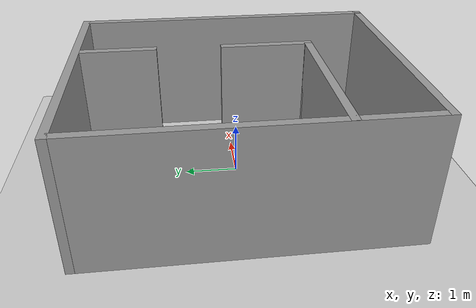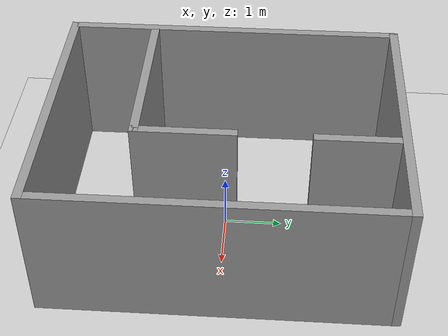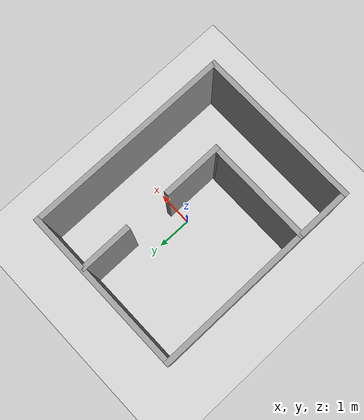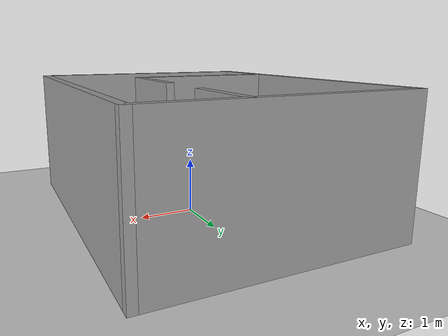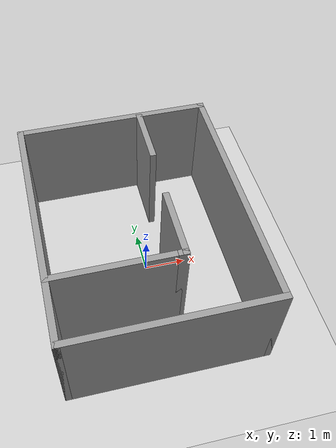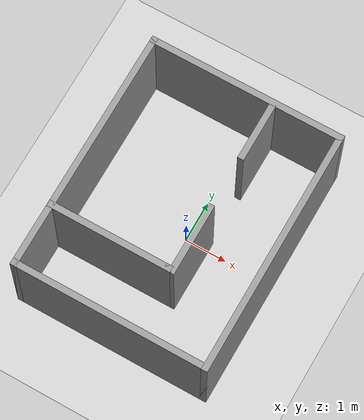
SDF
<sdf version="1.6">
 <world name="default">
  <light name="sun" type="directional">
   <pose>0 0 10 0 -0 0</pose>
   <diffuse>0.8 0.8 0.8 1</diffuse>
   <specular>0.2 0.2 0.2 1</specular>
   <attenuation>
    <range>1000</range>
    <constant>0.9</constant>
    <linear>0.01</linear>
    <quadratic>0.001</quadratic>
   </attenuation>
   <direction>-0.5 0.1 -0.9</direction>
  </light>
  <model name="ground_plane">
   <static>1</static>
   <link name="link">
    <collision name="collision">
     <geometry><plane><normal>0 0 1</normal><size>100 100</size></plane></geometry>
     <surface>
      <contact><collide_bitmask>65535</collide_bitmask></contact>
      <friction><ode><mu>100</mu><mu2>50</mu2></ode></friction>
     </surface>
    </collision>
    <visual name="visual">
     <cast_shadows>0</cast_shadows>
     <geometry><plane><normal>0 0 1</normal><size>100 100</size></plane></geometry>
     <material>
      <script><uri>file://media/materials/scripts/gazebo.material</uri><name>Gazebo/Grey</name></script>
     </material>
    </visual>
   </link>
  </model>
  <gravity>0 0 -9.8</gravity>
  <magnetic_field>6e-06 2.3e-05 -4.2e-05</magnetic_field>
  <atmosphere type="adiabatic"/>
  <physics name="default_physics" default="0" type="ode">
   <max_step_size>0.001</max_step_size>
   <real_time_factor>1</real_time_factor>
   <real_time_update_rate>1000</real_time_update_rate>
  </physics>
  <scene><ambient>0.4 0.4 0.4 1</ambient><background>0.7 0.7 0.7 1</background><shadows>1</shadows></scene>
  <audio><device>default</device></audio>
  <spherical_coordinates>
   <surface_model>EARTH_WGS84</surface_model>
   <latitude_deg>0</latitude_deg>
   <longitude_deg>0</longitude_deg>
   <elevation>0</elevation>
   <heading_deg>0</heading_deg>
  </spherical_coordinates>
  <model name="room">
   <pose>-0.17005 -0.010575 0 0 -0 0</pose>
   <link name="Wall_0">
    <collision name="Wall_0_Collision">
     <geometry><box><size>4.75 0.15 2.5</size></box></geometry>
     <pose>0 0 1.25 0 -0 0</pose>
    </collision>
    <visual name="Wall_0_Visual">
     <pose>0 0 1.25 0 -0 0</pose>
     <geometry><box><size>4.75 0.15 2.5</size></box></geometry>
     <material>
      <script><uri>file://media/materials/scripts/gazebo.material</uri><name>Gazebo/Grey</name></script>
      <ambient>1 1 1 1</ambient>
     </material>
     <meta><layer>0</layer></meta>
    </visual>
    <pose>0 -2.925 0 0 -0 0</pose>
   </link>
   <link name="Wall_1">
    <collision name="Wall_1_Collision">
     <geometry><box><size>6 0.15 2.5</size></box></geometry>
     <pose>0 0 1.25 0 -0 0</pose>
    </collision>
    <visual name="Wall_1_Visual">
     <pose>0 0 1.25 0 -0 0</pose>
     <geometry><box><size>6 0.15 2.5</size></box></geometry>
     <material>
      <script><uri>file://media/materials/scripts/gazebo.material</uri><name>Gazebo/Grey</name></script>
      <ambient>1 1 1 1</ambient>
     </material>
     <meta><layer>0</layer></meta>
    </visual>
    <pose>2.3 0 0 0 -0 1.5708</pose>
   </link>
   <link name="Wall_10">
    <collision name="Wall_10_Collision">
     <geometry><box><size>1.75 0.15 2.5</size></box></geometry>
     <pose>0 0 1.25 0 -0 0</pose>
    </collision>
    <visual name="Wall_10_Visual">
     <pose>0 0 1.25 0 -0 0</pose>
     <geometry><box><size>1.75 0.15 2.5</size></box></geometry>
     <material>
      <script><uri>file://media/materials/scripts/gazebo.material</uri><name>Gazebo/Grey</name></script>
      <ambient>1 1 1 1</ambient>
     </material>
     <meta><layer>0</layer></meta>
    </visual>
    <pose>0.656945 -0.634546 0 0 -0 1.5708</pose>
   </link>
   <link name="Wall_14">
    <collision name="Wall_14_Collision">
     <geometry><box><size>1.5 0.15 2.5</size></box></geometry>
     <pose>0 0 1.25 0 -0 0</pose>
    </collision>
    <visual name="Wall_14_Visual">
     <pose>0 0 1.25 0 -0 0</pose>
     <geometry><box><size>1.5 0.15 2.5</size></box></geometry>
     <material>
      <script><uri>file://media/materials/scripts/gazebo.material</uri><name>Gazebo/Grey</name></script>
      <ambient>1 1 1 1</ambient>
     </material>
     <meta><layer>0</layer></meta>
    </visual>
    <pose>0.680256 2.19301 0 0 -0 -1.5708</pose>
   </link>
   <link name="Wall_2">
    <collision name="Wall_2_Collision">
     <geometry><box><size>4.75 0.15 2.5</size></box></geometry>
     <pose>0 0 1.25 0 -0 0</pose>
    </collision>
    <visual name="Wall_2_Visual">
     <pose>0 0 1.25 0 -0 0</pose>
     <geometry><box><size>4.75 0.15 2.5</size></box></geometry>
     <material>
      <script><uri>file://media/materials/scripts/gazebo.material</uri><name>Gazebo/Grey</name></script>
      <ambient>1 1 1 1</ambient>
     </material>
     <meta><layer>0</layer></meta>
    </visual>
    <pose>0 2.925 0 0 -0 3.14159</pose>
   </link>
   <link name="Wall_3">
    <collision name="Wall_3_Collision">
     <geometry><box><size>6 0.15 2.5</size></box></geometry>
     <pose>0 0 1.25 0 -0 0</pose>
    </collision>
    <visual name="Wall_3_Visual">
     <pose>0 0 1.25 0 -0 0</pose>
     <geometry><box><size>6 0.15 2.5</size></box></geometry>
     <material>
      <script><uri>file://media/materials/scripts/gazebo.material</uri><name>Gazebo/Grey</name></script>
      <ambient>1 1 1 1</ambient>
     </material>
     <meta><layer>0</layer></meta>
    </visual>
    <pose>-2.3 0 0 0 -0 -1.5708</pose>
   </link>
   <link name="Wall_8">
    <collision name="Wall_8_Collision">
     <geometry><box><size>3 0.15 2.5</size></box></geometry>
     <pose>0 0 1.25 0 -0 0</pose>
    </collision>
    <visual name="Wall_8_Visual">
     <pose>0 0 1.25 0 -0 0</pose>
     <geometry><box><size>3 0.15 2.5</size></box></geometry>
     <material>
      <script><uri>file://media/materials/scripts/gazebo.material</uri><name>Gazebo/Grey</name></script>
      <ambient>1 1 1 1</ambient>
     </material>
     <meta><layer>0</layer></meta>
    </visual>
    <pose>-0.868055 -1.43455 0 0 -0 0</pose>
   </link>
   <link name="Wall_9">
    <collision name="Wall_9_Collision">
     <geometry><box><size>0.25 0.15 2.5</size></box></geometry>
     <pose>0 0 1.25 0 -0 0</pose>
    </collision>
    <visual name="Wall_9_Visual">
     <pose>0 0 1.25 0 -0 0</pose>
     <geometry><box><size>0.25 0.15 2.5</size></box></geometry>
     <material>
      <script><uri>file://media/materials/scripts/gazebo.material</uri><name>Gazebo/Grey</name></script>
      <ambient>1 1 1 1</ambient>
     </material>
     <meta><layer>0</layer></meta>
    </visual>
    <pose>0.606945 -1.43455 0 0 -0 0</pose>
   </link>
   <static>1</static>
  </model>
 </world>
</sdf>
